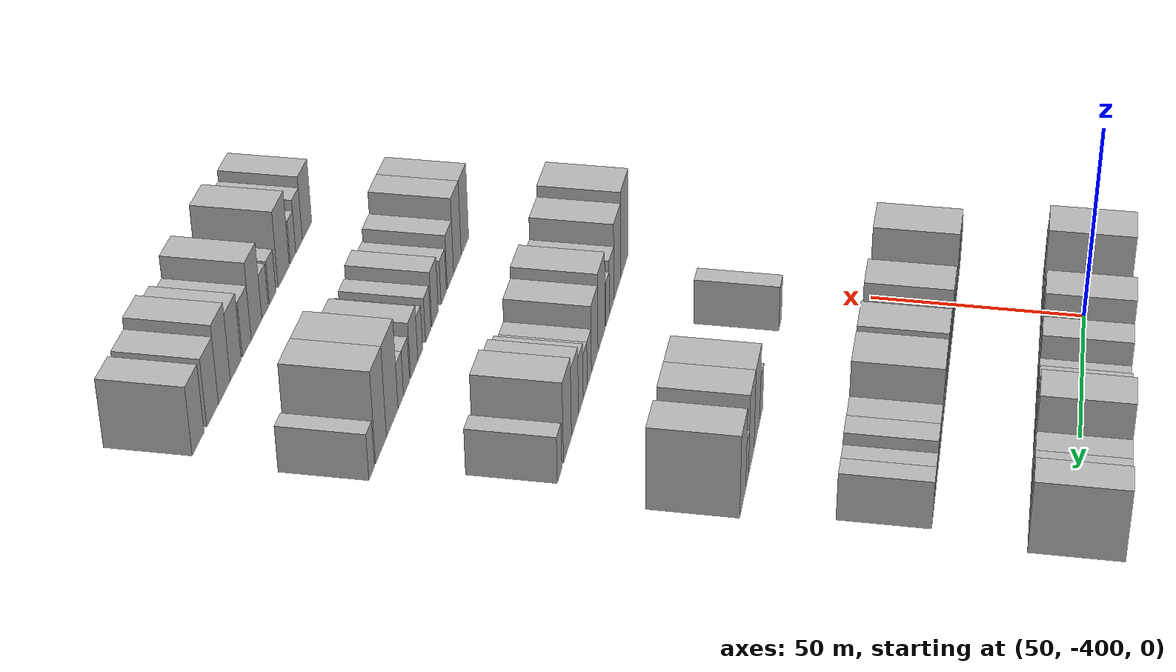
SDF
<sdf version="1.6">
 <world name="default">
  <model name="building_25">
   <static>1</static>
   <pose>50.0000 -412.1500 0 0.000000 0.000000 0.000000</pose>
   <link name="link">
    <pose>0 0 7.50 0 0 0</pose>
    <collision name="collision"><geometry><box><size>20.0000 6.4581 15.0000</size></box></geometry></collision>
    <visual name="visual">
     <cast_shadows>0</cast_shadows>
     <geometry><box><size>20.0000 6.4581 15.0000</size></box></geometry>
     <material>
      <script>
       <uri>model://HANNAS_wall/materials/scripts</uri>
       <uri>model://HANNAS_wall/materials/textures</uri>
       <name>vrc/HANNAS_wall</name>
      </script>
     </material>
    </visual>
   </link>
  </model>
  <model name="building_26">
   <static>1</static>
   <pose>50.0000 -403.1334 0 0.000000 0.000000 0.000000</pose>
   <link name="link">
    <pose>0 0 12.00 0 0 0</pose>
    <collision name="collision"><geometry><box><size>20.0000 11.5751 24.0000</size></box></geometry></collision>
    <visual name="visual">
     <cast_shadows>0</cast_shadows>
     <geometry><box><size>20.0000 11.5751 24.0000</size></box></geometry>
     <material>
      <script>
       <uri>model://HANNAS_wall/materials/scripts</uri>
       <uri>model://HANNAS_wall/materials/textures</uri>
       <name>vrc/HANNAS_wall</name>
      </script>
     </material>
    </visual>
   </link>
  </model>
  <model name="building_27">
   <static>1</static>
   <pose>50.0000 -391.4568 0 0.000000 0.000000 0.000000</pose>
   <link name="link">
    <pose>0 0 6.00 0 0 0</pose>
    <collision name="collision"><geometry><box><size>20.0000 5.7781 12.0000</size></box></geometry></collision>
    <visual name="visual">
     <cast_shadows>0</cast_shadows>
     <geometry><box><size>20.0000 5.7781 12.0000</size></box></geometry>
     <material>
      <script>
       <uri>model://HANNAS_wall/materials/scripts</uri>
       <uri>model://HANNAS_wall/materials/textures</uri>
       <name>vrc/HANNAS_wall</name>
      </script>
     </material>
    </visual>
   </link>
  </model>
  <model name="building_28">
   <static>1</static>
   <pose>50.0000 -384.2687 0 0.000000 0.000000 0.000000</pose>
   <link name="link">
    <pose>0 0 9.00 0 0 0</pose>
    <collision name="collision"><geometry><box><size>20.0000 8.5982 18.0000</size></box></geometry></collision>
    <visual name="visual">
     <cast_shadows>0</cast_shadows>
     <geometry><box><size>20.0000 8.5982 18.0000</size></box></geometry>
     <material>
      <script>
       <uri>model://HANNAS_wall/materials/scripts</uri>
       <uri>model://HANNAS_wall/materials/textures</uri>
       <name>vrc/HANNAS_wall</name>
      </script>
     </material>
    </visual>
   </link>
  </model>
  <model name="building_29">
   <static>1</static>
   <pose>50.0000 -374.9771 0 0.000000 0.000000 0.000000</pose>
   <link name="link">
    <pose>0 0 12.00 0 0 0</pose>
    <collision name="collision"><geometry><box><size>20.0000 9.9851 24.0000</size></box></geometry></collision>
    <visual name="visual">
     <cast_shadows>0</cast_shadows>
     <geometry><box><size>20.0000 9.9851 24.0000</size></box></geometry>
     <material>
      <script>
       <uri>model://HANNAS_wall/materials/scripts</uri>
       <uri>model://HANNAS_wall/materials/textures</uri>
       <name>vrc/HANNAS_wall</name>
      </script>
     </material>
    </visual>
   </link>
  </model>
  <model name="building_30">
   <static>1</static>
   <pose>50.0000 -366.0663 0 0.000000 0.000000 0.000000</pose>
   <link name="link">
    <pose>0 0 9.00 0 0 0</pose>
    <collision name="collision"><geometry><box><size>20.0000 7.8364 18.0000</size></box></geometry></collision>
    <visual name="visual">
     <cast_shadows>0</cast_shadows>
     <geometry><box><size>20.0000 7.8364 18.0000</size></box></geometry>
     <material>
      <script>
       <uri>model://HANNAS_wall/materials/scripts</uri>
       <uri>model://HANNAS_wall/materials/textures</uri>
       <name>vrc/HANNAS_wall</name>
      </script>
     </material>
    </visual>
   </link>
  </model>
  <model name="building_31">
   <static>1</static>
   <pose>50.0000 -359.4116 0 0.000000 0.000000 0.000000</pose>
   <link name="link">
    <pose>0 0 6.00 0 0 0</pose>
    <collision name="collision"><geometry><box><size>20.0000 5.4730 12.0000</size></box></geometry></collision>
    <visual name="visual">
     <cast_shadows>0</cast_shadows>
     <geometry><box><size>20.0000 5.4730 12.0000</size></box></geometry>
     <material>
      <script>
       <uri>model://HANNAS_wall/materials/scripts</uri>
       <uri>model://HANNAS_wall/materials/textures</uri>
       <name>vrc/HANNAS_wall</name>
      </script>
     </material>
    </visual>
   </link>
  </model>
  <model name="building_32">
   <static>1</static>
   <pose>50.0000 -351.4500 0 0.000000 0.000000 0.000000</pose>
   <link name="link">
    <pose>0 0 7.50 0 0 0</pose>
    <collision name="collision"><geometry><box><size>20.0000 6.4502 15.0000</size></box></geometry></collision>
    <visual name="visual">
     <cast_shadows>0</cast_shadows>
     <geometry><box><size>20.0000 6.4502 15.0000</size></box></geometry>
     <material>
      <script>
       <uri>model://HANNAS_wall/materials/scripts</uri>
       <uri>model://HANNAS_wall/materials/textures</uri>
       <name>vrc/HANNAS_wall</name>
      </script>
     </material>
    </visual>
   </link>
  </model>
  <model name="building_33">
   <static>1</static>
   <pose>50.0000 -345.4507 0 0.000000 0.000000 0.000000</pose>
   <link name="link">
    <pose>0 0 6.00 0 0 0</pose>
    <collision name="collision"><geometry><box><size>20.0000 5.5484 12.0000</size></box></geometry></collision>
    <visual name="visual">
     <cast_shadows>0</cast_shadows>
     <geometry><box><size>20.0000 5.5484 12.0000</size></box></geometry>
     <material>
      <script>
       <uri>model://HANNAS_wall/materials/scripts</uri>
       <uri>model://HANNAS_wall/materials/textures</uri>
       <name>vrc/HANNAS_wall</name>
      </script>
     </material>
    </visual>
   </link>
  </model>
  <model name="building_34">
   <static>1</static>
   <pose>50.0000 -334.6388 0 0.000000 0.000000 0.000000</pose>
   <link name="link">
    <pose>0 0 12.00 0 0 0</pose>
    <collision name="collision"><geometry><box><size>20.0000 10.0754 24.0000</size></box></geometry></collision>
    <visual name="visual">
     <cast_shadows>0</cast_shadows>
     <geometry><box><size>20.0000 10.0754 24.0000</size></box></geometry>
     <material>
      <script>
       <uri>model://HANNAS_wall/materials/scripts</uri>
       <uri>model://HANNAS_wall/materials/textures</uri>
       <name>vrc/HANNAS_wall</name>
      </script>
     </material>
    </visual>
   </link>
  </model>
  <model name="building_35">
   <static>1</static>
   <pose>50.0000 -326.1645 0 0.000000 0.000000 0.000000</pose>
   <link name="link">
    <pose>0 0 7.50 0 0 0</pose>
    <collision name="collision"><geometry><box><size>20.0000 6.8732 15.0000</size></box></geometry></collision>
    <visual name="visual">
     <cast_shadows>0</cast_shadows>
     <geometry><box><size>20.0000 6.8732 15.0000</size></box></geometry>
     <material>
      <script>
       <uri>model://HANNAS_wall/materials/scripts</uri>
       <uri>model://HANNAS_wall/materials/textures</uri>
       <name>vrc/HANNAS_wall</name>
      </script>
     </material>
    </visual>
   </link>
  </model>
  <model name="building_36">
   <static>1</static>
   <pose>50.0000 -319.3176 0 0.000000 0.000000 0.000000</pose>
   <link name="link">
    <pose>0 0 7.50 0 0 0</pose>
    <collision name="collision"><geometry><box><size>20.0000 6.8206 15.0000</size></box></geometry></collision>
    <visual name="visual">
     <cast_shadows>0</cast_shadows>
     <geometry><box><size>20.0000 6.8206 15.0000</size></box></geometry>
     <material>
      <script>
       <uri>model://HANNAS_wall/materials/scripts</uri>
       <uri>model://HANNAS_wall/materials/textures</uri>
       <name>vrc/HANNAS_wall</name>
      </script>
     </material>
    </visual>
   </link>
  </model>
  <model name="building_37">
   <static>1</static>
   <pose>50.0000 -311.5870 0 0.000000 0.000000 0.000000</pose>
   <link name="link">
    <pose>0 0 9.00 0 0 0</pose>
    <collision name="collision"><geometry><box><size>20.0000 8.6405 18.0000</size></box></geometry></collision>
    <visual name="visual">
     <cast_shadows>0</cast_shadows>
     <geometry><box><size>20.0000 8.6405 18.0000</size></box></geometry>
     <material>
      <script>
       <uri>model://HANNAS_wall/materials/scripts</uri>
       <uri>model://HANNAS_wall/materials/textures</uri>
       <name>vrc/HANNAS_wall</name>
      </script>
     </material>
    </visual>
   </link>
  </model>
  <model name="building_158">
   <static>1</static>
   <pose>90.0000 -415.0711 0 0.000000 0.000000 0.000000</pose>
   <link name="link">
    <pose>0 0 6.00 0 0 0</pose>
    <collision name="collision"><geometry><box><size>20.0000 5.4869 12.0000</size></box></geometry></collision>
    <visual name="visual">
     <cast_shadows>0</cast_shadows>
     <geometry><box><size>20.0000 5.4869 12.0000</size></box></geometry>
     <material>
      <script>
       <uri>model://HANNAS_wall/materials/scripts</uri>
       <uri>model://HANNAS_wall/materials/textures</uri>
       <name>vrc/HANNAS_wall</name>
      </script>
     </material>
    </visual>
   </link>
  </model>
  <model name="building_159">
   <static>1</static>
   <pose>90.0000 -407.6535 0 0.000000 0.000000 0.000000</pose>
   <link name="link">
    <pose>0 0 9.00 0 0 0</pose>
    <collision name="collision"><geometry><box><size>20.0000 7.3483 18.0000</size></box></geometry></collision>
    <visual name="visual">
     <cast_shadows>0</cast_shadows>
     <geometry><box><size>20.0000 7.3483 18.0000</size></box></geometry>
     <material>
      <script>
       <uri>model://HANNAS_wall/materials/scripts</uri>
       <uri>model://HANNAS_wall/materials/textures</uri>
       <name>vrc/HANNAS_wall</name>
      </script>
     </material>
    </visual>
   </link>
  </model>
  <model name="building_160">
   <static>1</static>
   <pose>90.0000 -398.1687 0 0.000000 0.000000 0.000000</pose>
   <link name="link">
    <pose>0 0 12.00 0 0 0</pose>
    <collision name="collision"><geometry><box><size>20.0000 11.6213 24.0000</size></box></geometry></collision>
    <visual name="visual">
     <cast_shadows>0</cast_shadows>
     <geometry><box><size>20.0000 11.6213 24.0000</size></box></geometry>
     <material>
      <script>
       <uri>model://HANNAS_wall/materials/scripts</uri>
       <uri>model://HANNAS_wall/materials/textures</uri>
       <name>vrc/HANNAS_wall</name>
      </script>
     </material>
    </visual>
   </link>
  </model>
  <model name="building_161">
   <static>1</static>
   <pose>90.0000 -389.0562 0 0.000000 0.000000 0.000000</pose>
   <link name="link">
    <pose>0 0 7.50 0 0 0</pose>
    <collision name="collision"><geometry><box><size>20.0000 6.6037 15.0000</size></box></geometry></collision>
    <visual name="visual">
     <cast_shadows>0</cast_shadows>
     <geometry><box><size>20.0000 6.6037 15.0000</size></box></geometry>
     <material>
      <script>
       <uri>model://HANNAS_wall/materials/scripts</uri>
       <uri>model://HANNAS_wall/materials/textures</uri>
       <name>vrc/HANNAS_wall</name>
      </script>
     </material>
    </visual>
   </link>
  </model>
  <model name="building_162">
   <static>1</static>
   <pose>90.0000 -382.0826 0 0.000000 0.000000 0.000000</pose>
   <link name="link">
    <pose>0 0 7.50 0 0 0</pose>
    <collision name="collision"><geometry><box><size>20.0000 7.3435 15.0000</size></box></geometry></collision>
    <visual name="visual">
     <cast_shadows>0</cast_shadows>
     <geometry><box><size>20.0000 7.3435 15.0000</size></box></geometry>
     <material>
      <script>
       <uri>model://HANNAS_wall/materials/scripts</uri>
       <uri>model://HANNAS_wall/materials/textures</uri>
       <name>vrc/HANNAS_wall</name>
      </script>
     </material>
    </visual>
   </link>
  </model>
  <model name="building_163">
   <static>1</static>
   <pose>90.0000 -373.2818 0 0.000000 0.000000 0.000000</pose>
   <link name="link">
    <pose>0 0 12.00 0 0 0</pose>
    <collision name="collision"><geometry><box><size>20.0000 10.2580 24.0000</size></box></geometry></collision>
    <visual name="visual">
     <cast_shadows>0</cast_shadows>
     <geometry><box><size>20.0000 10.2580 24.0000</size></box></geometry>
     <material>
      <script>
       <uri>model://HANNAS_wall/materials/scripts</uri>
       <uri>model://HANNAS_wall/materials/textures</uri>
       <name>vrc/HANNAS_wall</name>
      </script>
     </material>
    </visual>
   </link>
  </model>
  <model name="building_164">
   <static>1</static>
   <pose>90.0000 -364.2848 0 0.000000 0.000000 0.000000</pose>
   <link name="link">
    <pose>0 0 9.00 0 0 0</pose>
    <collision name="collision"><geometry><box><size>20.0000 7.7360 18.0000</size></box></geometry></collision>
    <visual name="visual">
     <cast_shadows>0</cast_shadows>
     <geometry><box><size>20.0000 7.7360 18.0000</size></box></geometry>
     <material>
      <script>
       <uri>model://HANNAS_wall/materials/scripts</uri>
       <uri>model://HANNAS_wall/materials/textures</uri>
       <name>vrc/HANNAS_wall</name>
      </script>
     </material>
    </visual>
   </link>
  </model>
  <model name="building_165">
   <static>1</static>
   <pose>90.0000 -355.3555 0 0.000000 0.000000 0.000000</pose>
   <link name="link">
    <pose>0 0 12.00 0 0 0</pose>
    <collision name="collision"><geometry><box><size>20.0000 10.1227 24.0000</size></box></geometry></collision>
    <visual name="visual">
     <cast_shadows>0</cast_shadows>
     <geometry><box><size>20.0000 10.1227 24.0000</size></box></geometry>
     <material>
      <script>
       <uri>model://HANNAS_wall/materials/scripts</uri>
       <uri>model://HANNAS_wall/materials/textures</uri>
       <name>vrc/HANNAS_wall</name>
      </script>
     </material>
    </visual>
   </link>
  </model>
  <model name="building_166">
   <static>1</static>
   <pose>90.0000 -342.3369 0 0.000000 0.000000 0.000000</pose>
   <link name="link">
    <pose>0 0 12.00 0 0 0</pose>
    <collision name="collision"><geometry><box><size>20.0000 11.9145 24.0000</size></box></geometry></collision>
    <visual name="visual">
     <cast_shadows>0</cast_shadows>
     <geometry><box><size>20.0000 11.9145 24.0000</size></box></geometry>
     <material>
      <script>
       <uri>model://HANNAS_wall/materials/scripts</uri>
       <uri>model://HANNAS_wall/materials/textures</uri>
       <name>vrc/HANNAS_wall</name>
      </script>
     </material>
    </visual>
   </link>
  </model>
  <model name="building_167">
   <static>1</static>
   <pose>90.0000 -332.7881 0 0.000000 0.000000 0.000000</pose>
   <link name="link">
    <pose>0 0 7.50 0 0 0</pose>
    <collision name="collision"><geometry><box><size>20.0000 7.1829 15.0000</size></box></geometry></collision>
    <visual name="visual">
     <cast_shadows>0</cast_shadows>
     <geometry><box><size>20.0000 7.1829 15.0000</size></box></geometry>
     <material>
      <script>
       <uri>model://HANNAS_wall/materials/scripts</uri>
       <uri>model://HANNAS_wall/materials/textures</uri>
       <name>vrc/HANNAS_wall</name>
      </script>
     </material>
    </visual>
   </link>
  </model>
  <model name="building_168">
   <static>1</static>
   <pose>90.0000 -325.9338 0 0.000000 0.000000 0.000000</pose>
   <link name="link">
    <pose>0 0 7.50 0 0 0</pose>
    <collision name="collision"><geometry><box><size>20.0000 6.5258 15.0000</size></box></geometry></collision>
    <visual name="visual">
     <cast_shadows>0</cast_shadows>
     <geometry><box><size>20.0000 6.5258 15.0000</size></box></geometry>
     <material>
      <script>
       <uri>model://HANNAS_wall/materials/scripts</uri>
       <uri>model://HANNAS_wall/materials/textures</uri>
       <name>vrc/HANNAS_wall</name>
      </script>
     </material>
    </visual>
   </link>
  </model>
  <model name="building_169">
   <static>1</static>
   <pose>90.0000 -320.2097 0 0.000000 0.000000 0.000000</pose>
   <link name="link">
    <pose>0 0 6.00 0 0 0</pose>
    <collision name="collision"><geometry><box><size>20.0000 4.9223 12.0000</size></box></geometry></collision>
    <visual name="visual">
     <cast_shadows>0</cast_shadows>
     <geometry><box><size>20.0000 4.9223 12.0000</size></box></geometry>
     <material>
      <script>
       <uri>model://HANNAS_wall/materials/scripts</uri>
       <uri>model://HANNAS_wall/materials/textures</uri>
       <name>vrc/HANNAS_wall</name>
      </script>
     </material>
    </visual>
   </link>
  </model>
  <model name="building_170">
   <static>1</static>
   <pose>90.0000 -314.9705 0 0.000000 0.000000 0.000000</pose>
   <link name="link">
    <pose>0 0 6.00 0 0 0</pose>
    <collision name="collision"><geometry><box><size>20.0000 5.5561 12.0000</size></box></geometry></collision>
    <visual name="visual">
     <cast_shadows>0</cast_shadows>
     <geometry><box><size>20.0000 5.5561 12.0000</size></box></geometry>
     <material>
      <script>
       <uri>model://HANNAS_wall/materials/scripts</uri>
       <uri>model://HANNAS_wall/materials/textures</uri>
       <name>vrc/HANNAS_wall</name>
      </script>
     </material>
    </visual>
   </link>
  </model>
  <model name="building_298">
   <static>1</static>
   <pose>130.0000 -385.1059 0 0.000000 0.000000 0.000000</pose>
   <link name="link">
    <pose>0 0 6.00 0 0 0</pose>
    <collision name="collision"><geometry><box><size>20.0000 5.3379 12.0000</size></box></geometry></collision>
    <visual name="visual">
     <cast_shadows>0</cast_shadows>
     <geometry><box><size>20.0000 5.3379 12.0000</size></box></geometry>
     <material>
      <script>
       <uri>model://HANNAS_wall/materials/scripts</uri>
       <uri>model://HANNAS_wall/materials/textures</uri>
       <name>vrc/HANNAS_wall</name>
      </script>
     </material>
    </visual>
   </link>
  </model>
  <model name="building_299">
   <static>1</static>
   <pose>130.0000 -347.6688 0 0.000000 0.000000 0.000000</pose>
   <link name="link">
    <pose>0 0 6.00 0 0 0</pose>
    <collision name="collision"><geometry><box><size>20.0000 5.8455 12.0000</size></box></geometry></collision>
    <visual name="visual">
     <cast_shadows>0</cast_shadows>
     <geometry><box><size>20.0000 5.8455 12.0000</size></box></geometry>
     <material>
      <script>
       <uri>model://HANNAS_wall/materials/scripts</uri>
       <uri>model://HANNAS_wall/materials/textures</uri>
       <name>vrc/HANNAS_wall</name>
      </script>
     </material>
    </visual>
   </link>
  </model>
  <model name="building_300">
   <static>1</static>
   <pose>130.0000 -339.5872 0 0.000000 0.000000 0.000000</pose>
   <link name="link">
    <pose>0 0 10.50 0 0 0</pose>
    <collision name="collision"><geometry><box><size>20.0000 10.3178 21.0000</size></box></geometry></collision>
    <visual name="visual">
     <cast_shadows>0</cast_shadows>
     <geometry><box><size>20.0000 10.3178 21.0000</size></box></geometry>
     <material>
      <script>
       <uri>model://HANNAS_wall/materials/scripts</uri>
       <uri>model://HANNAS_wall/materials/textures</uri>
       <name>vrc/HANNAS_wall</name>
      </script>
     </material>
    </visual>
   </link>
  </model>
  <model name="building_301">
   <static>1</static>
   <pose>130.0000 -329.5291 0 0.000000 0.000000 0.000000</pose>
   <link name="link">
    <pose>0 0 10.50 0 0 0</pose>
    <collision name="collision"><geometry><box><size>20.0000 9.7984 21.0000</size></box></geometry></collision>
    <visual name="visual">
     <cast_shadows>0</cast_shadows>
     <geometry><box><size>20.0000 9.7984 21.0000</size></box></geometry>
     <material>
      <script>
       <uri>model://HANNAS_wall/materials/scripts</uri>
       <uri>model://HANNAS_wall/materials/textures</uri>
       <name>vrc/HANNAS_wall</name>
      </script>
     </material>
    </visual>
   </link>
  </model>
  <model name="building_302">
   <static>1</static>
   <pose>130.0000 -322.2114 0 0.000000 0.000000 0.000000</pose>
   <link name="link">
    <pose>0 0 6.00 0 0 0</pose>
    <collision name="collision"><geometry><box><size>20.0000 4.8369 12.0000</size></box></geometry></collision>
    <visual name="visual">
     <cast_shadows>0</cast_shadows>
     <geometry><box><size>20.0000 4.8369 12.0000</size></box></geometry>
     <material>
      <script>
       <uri>model://HANNAS_wall/materials/scripts</uri>
       <uri>model://HANNAS_wall/materials/textures</uri>
       <name>vrc/HANNAS_wall</name>
      </script>
     </material>
    </visual>
   </link>
  </model>
  <model name="building_303">
   <static>1</static>
   <pose>130.0000 -314.7009 0 0.000000 0.000000 0.000000</pose>
   <link name="link">
    <pose>0 0 10.50 0 0 0</pose>
    <collision name="collision"><geometry><box><size>20.0000 10.1842 21.0000</size></box></geometry></collision>
    <visual name="visual">
     <cast_shadows>0</cast_shadows>
     <geometry><box><size>20.0000 10.1842 21.0000</size></box></geometry>
     <material>
      <script>
       <uri>model://HANNAS_wall/materials/scripts</uri>
       <uri>model://HANNAS_wall/materials/textures</uri>
       <name>vrc/HANNAS_wall</name>
      </script>
     </material>
    </visual>
   </link>
  </model>
  <model name="building_436">
   <static>1</static>
   <pose>170.0000 -404.8801 0 0.000000 0.000000 0.000000</pose>
   <link name="link">
    <pose>0 0 12.00 0 0 0</pose>
    <collision name="collision"><geometry><box><size>20.0000 11.5791 24.0000</size></box></geometry></collision>
    <visual name="visual">
     <cast_shadows>0</cast_shadows>
     <geometry><box><size>20.0000 11.5791 24.0000</size></box></geometry>
     <material>
      <script>
       <uri>model://HANNAS_wall/materials/scripts</uri>
       <uri>model://HANNAS_wall/materials/textures</uri>
       <name>vrc/HANNAS_wall</name>
      </script>
     </material>
    </visual>
   </link>
  </model>
  <model name="building_437">
   <static>1</static>
   <pose>170.0000 -394.2025 0 0.000000 0.000000 0.000000</pose>
   <link name="link">
    <pose>0 0 10.50 0 0 0</pose>
    <collision name="collision"><geometry><box><size>20.0000 9.7761 21.0000</size></box></geometry></collision>
    <visual name="visual">
     <cast_shadows>0</cast_shadows>
     <geometry><box><size>20.0000 9.7761 21.0000</size></box></geometry>
     <material>
      <script>
       <uri>model://HANNAS_wall/materials/scripts</uri>
       <uri>model://HANNAS_wall/materials/textures</uri>
       <name>vrc/HANNAS_wall</name>
      </script>
     </material>
    </visual>
   </link>
  </model>
  <model name="building_438">
   <static>1</static>
   <pose>170.0000 -386.0560 0 0.000000 0.000000 0.000000</pose>
   <link name="link">
    <pose>0 0 7.50 0 0 0</pose>
    <collision name="collision"><geometry><box><size>20.0000 6.5169 15.0000</size></box></geometry></collision>
    <visual name="visual">
     <cast_shadows>0</cast_shadows>
     <geometry><box><size>20.0000 6.5169 15.0000</size></box></geometry>
     <material>
      <script>
       <uri>model://HANNAS_wall/materials/scripts</uri>
       <uri>model://HANNAS_wall/materials/textures</uri>
       <name>vrc/HANNAS_wall</name>
      </script>
     </material>
    </visual>
   </link>
  </model>
  <model name="building_439">
   <static>1</static>
   <pose>170.0000 -380.3522 0 0.000000 0.000000 0.000000</pose>
   <link name="link">
    <pose>0 0 6.00 0 0 0</pose>
    <collision name="collision"><geometry><box><size>20.0000 4.8907 12.0000</size></box></geometry></collision>
    <visual name="visual">
     <cast_shadows>0</cast_shadows>
     <geometry><box><size>20.0000 4.8907 12.0000</size></box></geometry>
     <material>
      <script>
       <uri>model://HANNAS_wall/materials/scripts</uri>
       <uri>model://HANNAS_wall/materials/textures</uri>
       <name>vrc/HANNAS_wall</name>
      </script>
     </material>
    </visual>
   </link>
  </model>
  <model name="building_440">
   <static>1</static>
   <pose>170.0000 -371.9979 0 0.000000 0.000000 0.000000</pose>
   <link name="link">
    <pose>0 0 10.50 0 0 0</pose>
    <collision name="collision"><geometry><box><size>20.0000 9.8180 21.0000</size></box></geometry></collision>
    <visual name="visual">
     <cast_shadows>0</cast_shadows>
     <geometry><box><size>20.0000 9.8180 21.0000</size></box></geometry>
     <material>
      <script>
       <uri>model://HANNAS_wall/materials/scripts</uri>
       <uri>model://HANNAS_wall/materials/textures</uri>
       <name>vrc/HANNAS_wall</name>
      </script>
     </material>
    </visual>
   </link>
  </model>
  <model name="building_441">
   <static>1</static>
   <pose>170.0000 -362.6450 0 0.000000 0.000000 0.000000</pose>
   <link name="link">
    <pose>0 0 9.00 0 0 0</pose>
    <collision name="collision"><geometry><box><size>20.0000 8.8878 18.0000</size></box></geometry></collision>
    <visual name="visual">
     <cast_shadows>0</cast_shadows>
     <geometry><box><size>20.0000 8.8878 18.0000</size></box></geometry>
     <material>
      <script>
       <uri>model://HANNAS_wall/materials/scripts</uri>
       <uri>model://HANNAS_wall/materials/textures</uri>
       <name>vrc/HANNAS_wall</name>
      </script>
     </material>
    </visual>
   </link>
  </model>
  <model name="building_442">
   <static>1</static>
   <pose>170.0000 -355.4885 0 0.000000 0.000000 0.000000</pose>
   <link name="link">
    <pose>0 0 6.00 0 0 0</pose>
    <collision name="collision"><geometry><box><size>20.0000 5.4253 12.0000</size></box></geometry></collision>
    <visual name="visual">
     <cast_shadows>0</cast_shadows>
     <geometry><box><size>20.0000 5.4253 12.0000</size></box></geometry>
     <material>
      <script>
       <uri>model://HANNAS_wall/materials/scripts</uri>
       <uri>model://HANNAS_wall/materials/textures</uri>
       <name>vrc/HANNAS_wall</name>
      </script>
     </material>
    </visual>
   </link>
  </model>
  <model name="building_443">
   <static>1</static>
   <pose>170.0000 -350.1709 0 0.000000 0.000000 0.000000</pose>
   <link name="link">
    <pose>0 0 6.00 0 0 0</pose>
    <collision name="collision"><geometry><box><size>20.0000 5.2098 12.0000</size></box></geometry></collision>
    <visual name="visual">
     <cast_shadows>0</cast_shadows>
     <geometry><box><size>20.0000 5.2098 12.0000</size></box></geometry>
     <material>
      <script>
       <uri>model://HANNAS_wall/materials/scripts</uri>
       <uri>model://HANNAS_wall/materials/textures</uri>
       <name>vrc/HANNAS_wall</name>
      </script>
     </material>
    </visual>
   </link>
  </model>
  <model name="building_444">
   <static>1</static>
   <pose>170.0000 -344.5571 0 0.000000 0.000000 0.000000</pose>
   <link name="link">
    <pose>0 0 7.50 0 0 0</pose>
    <collision name="collision"><geometry><box><size>20.0000 6.0179 15.0000</size></box></geometry></collision>
    <visual name="visual">
     <cast_shadows>0</cast_shadows>
     <geometry><box><size>20.0000 6.0179 15.0000</size></box></geometry>
     <material>
      <script>
       <uri>model://HANNAS_wall/materials/scripts</uri>
       <uri>model://HANNAS_wall/materials/textures</uri>
       <name>vrc/HANNAS_wall</name>
      </script>
     </material>
    </visual>
   </link>
  </model>
  <model name="building_445">
   <static>1</static>
   <pose>170.0000 -337.1534 0 0.000000 0.000000 0.000000</pose>
   <link name="link">
    <pose>0 0 9.00 0 0 0</pose>
    <collision name="collision"><geometry><box><size>20.0000 8.7895 18.0000</size></box></geometry></collision>
    <visual name="visual">
     <cast_shadows>0</cast_shadows>
     <geometry><box><size>20.0000 8.7895 18.0000</size></box></geometry>
     <material>
      <script>
       <uri>model://HANNAS_wall/materials/scripts</uri>
       <uri>model://HANNAS_wall/materials/textures</uri>
       <name>vrc/HANNAS_wall</name>
      </script>
     </material>
    </visual>
   </link>
  </model>
  <model name="building_446">
   <static>1</static>
   <pose>170.0000 -327.8892 0 0.000000 0.000000 0.000000</pose>
   <link name="link">
    <pose>0 0 10.50 0 0 0</pose>
    <collision name="collision"><geometry><box><size>20.0000 9.7388 21.0000</size></box></geometry></collision>
    <visual name="visual">
     <cast_shadows>0</cast_shadows>
     <geometry><box><size>20.0000 9.7388 21.0000</size></box></geometry>
     <material>
      <script>
       <uri>model://HANNAS_wall/materials/scripts</uri>
       <uri>model://HANNAS_wall/materials/textures</uri>
       <name>vrc/HANNAS_wall</name>
      </script>
     </material>
    </visual>
   </link>
  </model>
  <model name="building_447">
   <static>1</static>
   <pose>170.0000 -318.3520 0 0.000000 0.000000 0.000000</pose>
   <link name="link">
    <pose>0 0 6.00 0 0 0</pose>
    <collision name="collision"><geometry><box><size>20.0000 5.3356 12.0000</size></box></geometry></collision>
    <visual name="visual">
     <cast_shadows>0</cast_shadows>
     <geometry><box><size>20.0000 5.3356 12.0000</size></box></geometry>
     <material>
      <script>
       <uri>model://HANNAS_wall/materials/scripts</uri>
       <uri>model://HANNAS_wall/materials/textures</uri>
       <name>vrc/HANNAS_wall</name>
      </script>
     </material>
    </visual>
   </link>
  </model>
  <model name="building_571">
   <static>1</static>
   <pose>210.0000 -407.8643 0 0.000000 0.000000 0.000000</pose>
   <link name="link">
    <pose>0 0 10.50 0 0 0</pose>
    <collision name="collision"><geometry><box><size>20.0000 8.5416 21.0000</size></box></geometry></collision>
    <visual name="visual">
     <cast_shadows>0</cast_shadows>
     <geometry><box><size>20.0000 8.5416 21.0000</size></box></geometry>
     <material>
      <script>
       <uri>model://HANNAS_wall/materials/scripts</uri>
       <uri>model://HANNAS_wall/materials/textures</uri>
       <name>vrc/HANNAS_wall</name>
      </script>
     </material>
    </visual>
   </link>
  </model>
  <model name="building_572">
   <static>1</static>
   <pose>210.0000 -399.3245 0 0.000000 0.000000 0.000000</pose>
   <link name="link">
    <pose>0 0 10.50 0 0 0</pose>
    <collision name="collision"><geometry><box><size>20.0000 8.5379 21.0000</size></box></geometry></collision>
    <visual name="visual">
     <cast_shadows>0</cast_shadows>
     <geometry><box><size>20.0000 8.5379 21.0000</size></box></geometry>
     <material>
      <script>
       <uri>model://HANNAS_wall/materials/scripts</uri>
       <uri>model://HANNAS_wall/materials/textures</uri>
       <name>vrc/HANNAS_wall</name>
      </script>
     </material>
    </visual>
   </link>
  </model>
  <model name="building_573">
   <static>1</static>
   <pose>210.0000 -391.5107 0 0.000000 0.000000 0.000000</pose>
   <link name="link">
    <pose>0 0 7.50 0 0 0</pose>
    <collision name="collision"><geometry><box><size>20.0000 7.0899 15.0000</size></box></geometry></collision>
    <visual name="visual">
     <cast_shadows>0</cast_shadows>
     <geometry><box><size>20.0000 7.0899 15.0000</size></box></geometry>
     <material>
      <script>
       <uri>model://HANNAS_wall/materials/scripts</uri>
       <uri>model://HANNAS_wall/materials/textures</uri>
       <name>vrc/HANNAS_wall</name>
      </script>
     </material>
    </visual>
   </link>
  </model>
  <model name="building_574">
   <static>1</static>
   <pose>210.0000 -384.0831 0 0.000000 0.000000 0.000000</pose>
   <link name="link">
    <pose>0 0 6.00 0 0 0</pose>
    <collision name="collision"><geometry><box><size>20.0000 5.7651 12.0000</size></box></geometry></collision>
    <visual name="visual">
     <cast_shadows>0</cast_shadows>
     <geometry><box><size>20.0000 5.7651 12.0000</size></box></geometry>
     <material>
      <script>
       <uri>model://HANNAS_wall/materials/scripts</uri>
       <uri>model://HANNAS_wall/materials/textures</uri>
       <name>vrc/HANNAS_wall</name>
      </script>
     </material>
    </visual>
   </link>
  </model>
  <model name="building_575">
   <static>1</static>
   <pose>210.0000 -374.7395 0 0.000000 0.000000 0.000000</pose>
   <link name="link">
    <pose>0 0 7.50 0 0 0</pose>
    <collision name="collision"><geometry><box><size>20.0000 6.9222 15.0000</size></box></geometry></collision>
    <visual name="visual">
     <cast_shadows>0</cast_shadows>
     <geometry><box><size>20.0000 6.9222 15.0000</size></box></geometry>
     <material>
      <script>
       <uri>model://HANNAS_wall/materials/scripts</uri>
       <uri>model://HANNAS_wall/materials/textures</uri>
       <name>vrc/HANNAS_wall</name>
      </script>
     </material>
    </visual>
   </link>
  </model>
  <model name="building_576">
   <static>1</static>
   <pose>210.0000 -367.5301 0 0.000000 0.000000 0.000000</pose>
   <link name="link">
    <pose>0 0 6.00 0 0 0</pose>
    <collision name="collision"><geometry><box><size>20.0000 5.4967 12.0000</size></box></geometry></collision>
    <visual name="visual">
     <cast_shadows>0</cast_shadows>
     <geometry><box><size>20.0000 5.4967 12.0000</size></box></geometry>
     <material>
      <script>
       <uri>model://HANNAS_wall/materials/scripts</uri>
       <uri>model://HANNAS_wall/materials/textures</uri>
       <name>vrc/HANNAS_wall</name>
      </script>
     </material>
    </visual>
   </link>
  </model>
  <model name="building_577">
   <static>1</static>
   <pose>210.0000 -359.3313 0 0.000000 0.000000 0.000000</pose>
   <link name="link">
    <pose>0 0 6.00 0 0 0</pose>
    <collision name="collision"><geometry><box><size>20.0000 4.9007 12.0000</size></box></geometry></collision>
    <visual name="visual">
     <cast_shadows>0</cast_shadows>
     <geometry><box><size>20.0000 4.9007 12.0000</size></box></geometry>
     <material>
      <script>
       <uri>model://HANNAS_wall/materials/scripts</uri>
       <uri>model://HANNAS_wall/materials/textures</uri>
       <name>vrc/HANNAS_wall</name>
      </script>
     </material>
    </visual>
   </link>
  </model>
  <model name="building_578">
   <static>1</static>
   <pose>210.0000 -353.2451 0 0.000000 0.000000 0.000000</pose>
   <link name="link">
    <pose>0 0 7.50 0 0 0</pose>
    <collision name="collision"><geometry><box><size>20.0000 7.2718 15.0000</size></box></geometry></collision>
    <visual name="visual">
     <cast_shadows>0</cast_shadows>
     <geometry><box><size>20.0000 7.2718 15.0000</size></box></geometry>
     <material>
      <script>
       <uri>model://HANNAS_wall/materials/scripts</uri>
       <uri>model://HANNAS_wall/materials/textures</uri>
       <name>vrc/HANNAS_wall</name>
      </script>
     </material>
    </visual>
   </link>
  </model>
  <model name="building_579">
   <static>1</static>
   <pose>210.0000 -345.6482 0 0.000000 0.000000 0.000000</pose>
   <link name="link">
    <pose>0 0 6.00 0 0 0</pose>
    <collision name="collision"><geometry><box><size>20.0000 5.9220 12.0000</size></box></geometry></collision>
    <visual name="visual">
     <cast_shadows>0</cast_shadows>
     <geometry><box><size>20.0000 5.9220 12.0000</size></box></geometry>
     <material>
      <script>
       <uri>model://HANNAS_wall/materials/scripts</uri>
       <uri>model://HANNAS_wall/materials/textures</uri>
       <name>vrc/HANNAS_wall</name>
      </script>
     </material>
    </visual>
   </link>
  </model>
  <model name="building_580">
   <static>1</static>
   <pose>210.0000 -340.0192 0 0.000000 0.000000 0.000000</pose>
   <link name="link">
    <pose>0 0 6.00 0 0 0</pose>
    <collision name="collision"><geometry><box><size>20.0000 5.3360 12.0000</size></box></geometry></collision>
    <visual name="visual">
     <cast_shadows>0</cast_shadows>
     <geometry><box><size>20.0000 5.3360 12.0000</size></box></geometry>
     <material>
      <script>
       <uri>model://HANNAS_wall/materials/scripts</uri>
       <uri>model://HANNAS_wall/materials/textures</uri>
       <name>vrc/HANNAS_wall</name>
      </script>
     </material>
    </visual>
   </link>
  </model>
  <model name="building_581">
   <static>1</static>
   <pose>210.0000 -331.8651 0 0.000000 0.000000 0.000000</pose>
   <link name="link">
    <pose>0 0 12.00 0 0 0</pose>
    <collision name="collision"><geometry><box><size>20.0000 10.9723 24.0000</size></box></geometry></collision>
    <visual name="visual">
     <cast_shadows>0</cast_shadows>
     <geometry><box><size>20.0000 10.9723 24.0000</size></box></geometry>
     <material>
      <script>
       <uri>model://HANNAS_wall/materials/scripts</uri>
       <uri>model://HANNAS_wall/materials/textures</uri>
       <name>vrc/HANNAS_wall</name>
      </script>
     </material>
    </visual>
   </link>
  </model>
  <model name="building_582">
   <static>1</static>
   <pose>210.0000 -321.4096 0 0.000000 0.000000 0.000000</pose>
   <link name="link">
    <pose>0 0 12.00 0 0 0</pose>
    <collision name="collision"><geometry><box><size>20.0000 9.9388 24.0000</size></box></geometry></collision>
    <visual name="visual">
     <cast_shadows>0</cast_shadows>
     <geometry><box><size>20.0000 9.9388 24.0000</size></box></geometry>
     <material>
      <script>
       <uri>model://HANNAS_wall/materials/scripts</uri>
       <uri>model://HANNAS_wall/materials/textures</uri>
       <name>vrc/HANNAS_wall</name>
      </script>
     </material>
    </visual>
   </link>
  </model>
  <model name="building_583">
   <static>1</static>
   <pose>210.0000 -312.9250 0 0.000000 0.000000 0.000000</pose>
   <link name="link">
    <pose>0 0 6.00 0 0 0</pose>
    <collision name="collision"><geometry><box><size>20.0000 5.0303 12.0000</size></box></geometry></collision>
    <visual name="visual">
     <cast_shadows>0</cast_shadows>
     <geometry><box><size>20.0000 5.0303 12.0000</size></box></geometry>
     <material>
      <script>
       <uri>model://HANNAS_wall/materials/scripts</uri>
       <uri>model://HANNAS_wall/materials/textures</uri>
       <name>vrc/HANNAS_wall</name>
      </script>
     </material>
    </visual>
   </link>
  </model>
  <model name="building_707">
   <static>1</static>
   <pose>250.0000 -408.8723 0 0.000000 0.000000 0.000000</pose>
   <link name="link">
    <pose>0 0 9.00 0 0 0</pose>
    <collision name="collision"><geometry><box><size>20.0000 8.8485 18.0000</size></box></geometry></collision>
    <visual name="visual">
     <cast_shadows>0</cast_shadows>
     <geometry><box><size>20.0000 8.8485 18.0000</size></box></geometry>
     <material>
      <script>
       <uri>model://HANNAS_wall/materials/scripts</uri>
       <uri>model://HANNAS_wall/materials/textures</uri>
       <name>vrc/HANNAS_wall</name>
      </script>
     </material>
    </visual>
   </link>
  </model>
  <model name="building_708">
   <static>1</static>
   <pose>250.0000 -401.3826 0 0.000000 0.000000 0.000000</pose>
   <link name="link">
    <pose>0 0 7.50 0 0 0</pose>
    <collision name="collision"><geometry><box><size>20.0000 6.1309 15.0000</size></box></geometry></collision>
    <visual name="visual">
     <cast_shadows>0</cast_shadows>
     <geometry><box><size>20.0000 6.1309 15.0000</size></box></geometry>
     <material>
      <script>
       <uri>model://HANNAS_wall/materials/scripts</uri>
       <uri>model://HANNAS_wall/materials/textures</uri>
       <name>vrc/HANNAS_wall</name>
      </script>
     </material>
    </visual>
   </link>
  </model>
  <model name="building_709">
   <static>1</static>
   <pose>250.0000 -395.8453 0 0.000000 0.000000 0.000000</pose>
   <link name="link">
    <pose>0 0 6.00 0 0 0</pose>
    <collision name="collision"><geometry><box><size>20.0000 4.9437 12.0000</size></box></geometry></collision>
    <visual name="visual">
     <cast_shadows>0</cast_shadows>
     <geometry><box><size>20.0000 4.9437 12.0000</size></box></geometry>
     <material>
      <script>
       <uri>model://HANNAS_wall/materials/scripts</uri>
       <uri>model://HANNAS_wall/materials/textures</uri>
       <name>vrc/HANNAS_wall</name>
      </script>
     </material>
    </visual>
   </link>
  </model>
  <model name="building_710">
   <static>1</static>
   <pose>250.0000 -387.3906 0 0.000000 0.000000 0.000000</pose>
   <link name="link">
    <pose>0 0 10.50 0 0 0</pose>
    <collision name="collision"><geometry><box><size>20.0000 9.9658 21.0000</size></box></geometry></collision>
    <visual name="visual">
     <cast_shadows>0</cast_shadows>
     <geometry><box><size>20.0000 9.9658 21.0000</size></box></geometry>
     <material>
      <script>
       <uri>model://HANNAS_wall/materials/scripts</uri>
       <uri>model://HANNAS_wall/materials/textures</uri>
       <name>vrc/HANNAS_wall</name>
      </script>
     </material>
    </visual>
   </link>
  </model>
  <model name="building_711">
   <static>1</static>
   <pose>250.0000 -377.5810 0 0.000000 0.000000 0.000000</pose>
   <link name="link">
    <pose>0 0 6.00 0 0 0</pose>
    <collision name="collision"><geometry><box><size>20.0000 5.6533 12.0000</size></box></geometry></collision>
    <visual name="visual">
     <cast_shadows>0</cast_shadows>
     <geometry><box><size>20.0000 5.6533 12.0000</size></box></geometry>
     <material>
      <script>
       <uri>model://HANNAS_wall/materials/scripts</uri>
       <uri>model://HANNAS_wall/materials/textures</uri>
       <name>vrc/HANNAS_wall</name>
      </script>
     </material>
    </visual>
   </link>
  </model>
  <model name="building_712">
   <static>1</static>
   <pose>250.0000 -371.0213 0 0.000000 0.000000 0.000000</pose>
   <link name="link">
    <pose>0 0 6.00 0 0 0</pose>
    <collision name="collision"><geometry><box><size>20.0000 5.4663 12.0000</size></box></geometry></collision>
    <visual name="visual">
     <cast_shadows>0</cast_shadows>
     <geometry><box><size>20.0000 5.4663 12.0000</size></box></geometry>
     <material>
      <script>
       <uri>model://HANNAS_wall/materials/scripts</uri>
       <uri>model://HANNAS_wall/materials/textures</uri>
       <name>vrc/HANNAS_wall</name>
      </script>
     </material>
    </visual>
   </link>
  </model>
  <model name="building_713">
   <static>1</static>
   <pose>250.0000 -363.7990 0 0.000000 0.000000 0.000000</pose>
   <link name="link">
    <pose>0 0 10.50 0 0 0</pose>
    <collision name="collision"><geometry><box><size>20.0000 8.9783 21.0000</size></box></geometry></collision>
    <visual name="visual">
     <cast_shadows>0</cast_shadows>
     <geometry><box><size>20.0000 8.9783 21.0000</size></box></geometry>
     <material>
      <script>
       <uri>model://HANNAS_wall/materials/scripts</uri>
       <uri>model://HANNAS_wall/materials/textures</uri>
       <name>vrc/HANNAS_wall</name>
      </script>
     </material>
    </visual>
   </link>
  </model>
  <model name="building_714">
   <static>1</static>
   <pose>250.0000 -355.6778 0 0.000000 0.000000 0.000000</pose>
   <link name="link">
    <pose>0 0 7.50 0 0 0</pose>
    <collision name="collision"><geometry><box><size>20.0000 7.2642 15.0000</size></box></geometry></collision>
    <visual name="visual">
     <cast_shadows>0</cast_shadows>
     <geometry><box><size>20.0000 7.2642 15.0000</size></box></geometry>
     <material>
      <script>
       <uri>model://HANNAS_wall/materials/scripts</uri>
       <uri>model://HANNAS_wall/materials/textures</uri>
       <name>vrc/HANNAS_wall</name>
      </script>
     </material>
    </visual>
   </link>
  </model>
  <model name="building_715">
   <static>1</static>
   <pose>250.0000 -346.6787 0 0.000000 0.000000 0.000000</pose>
   <link name="link">
    <pose>0 0 9.00 0 0 0</pose>
    <collision name="collision"><geometry><box><size>20.0000 8.7338 18.0000</size></box></geometry></collision>
    <visual name="visual">
     <cast_shadows>0</cast_shadows>
     <geometry><box><size>20.0000 8.7338 18.0000</size></box></geometry>
     <material>
      <script>
       <uri>model://HANNAS_wall/materials/scripts</uri>
       <uri>model://HANNAS_wall/materials/textures</uri>
       <name>vrc/HANNAS_wall</name>
      </script>
     </material>
    </visual>
   </link>
  </model>
  <model name="building_716">
   <static>1</static>
   <pose>250.0000 -337.6608 0 0.000000 0.000000 0.000000</pose>
   <link name="link">
    <pose>0 0 10.50 0 0 0</pose>
    <collision name="collision"><geometry><box><size>20.0000 9.3020 21.0000</size></box></geometry></collision>
    <visual name="visual">
     <cast_shadows>0</cast_shadows>
     <geometry><box><size>20.0000 9.3020 21.0000</size></box></geometry>
     <material>
      <script>
       <uri>model://HANNAS_wall/materials/scripts</uri>
       <uri>model://HANNAS_wall/materials/textures</uri>
       <name>vrc/HANNAS_wall</name>
      </script>
     </material>
    </visual>
   </link>
  </model>
  <model name="building_717">
   <static>1</static>
   <pose>250.0000 -328.5232 0 0.000000 0.000000 0.000000</pose>
   <link name="link">
    <pose>0 0 9.00 0 0 0</pose>
    <collision name="collision"><geometry><box><size>20.0000 8.9733 18.0000</size></box></geometry></collision>
    <visual name="visual">
     <cast_shadows>0</cast_shadows>
     <geometry><box><size>20.0000 8.9733 18.0000</size></box></geometry>
     <material>
      <script>
       <uri>model://HANNAS_wall/materials/scripts</uri>
       <uri>model://HANNAS_wall/materials/textures</uri>
       <name>vrc/HANNAS_wall</name>
      </script>
     </material>
    </visual>
   </link>
  </model>
  <model name="building_718">
   <static>1</static>
   <pose>250.0000 -317.6148 0 0.000000 0.000000 0.000000</pose>
   <link name="link">
    <pose>0 0 9.00 0 0 0</pose>
    <collision name="collision"><geometry><box><size>20.0000 8.8435 18.0000</size></box></geometry></collision>
    <visual name="visual">
     <cast_shadows>0</cast_shadows>
     <geometry><box><size>20.0000 8.8435 18.0000</size></box></geometry>
     <material>
      <script>
       <uri>model://HANNAS_wall/materials/scripts</uri>
       <uri>model://HANNAS_wall/materials/textures</uri>
       <name>vrc/HANNAS_wall</name>
      </script>
     </material>
    </visual>
   </link>
  </model>
 </world>
</sdf>
